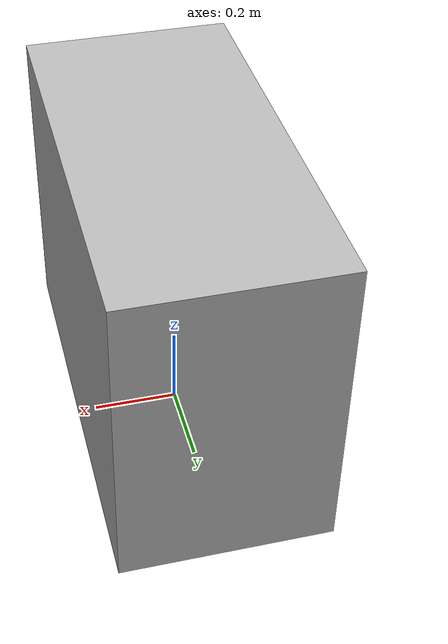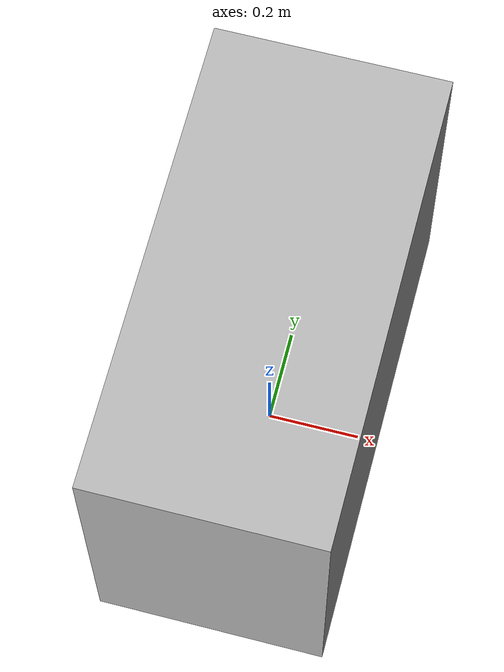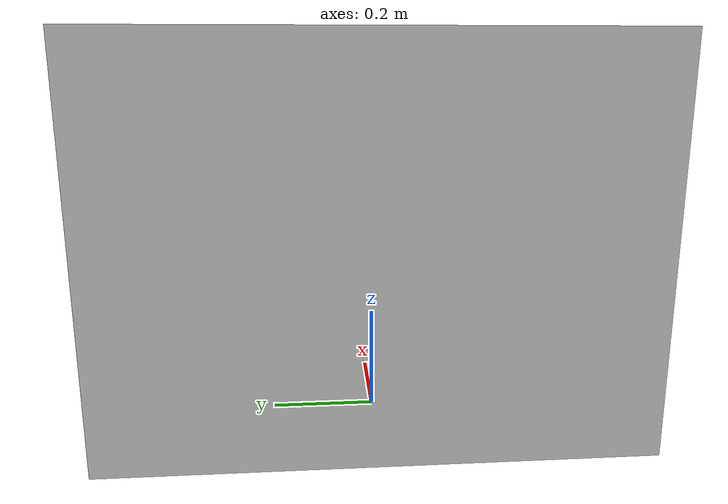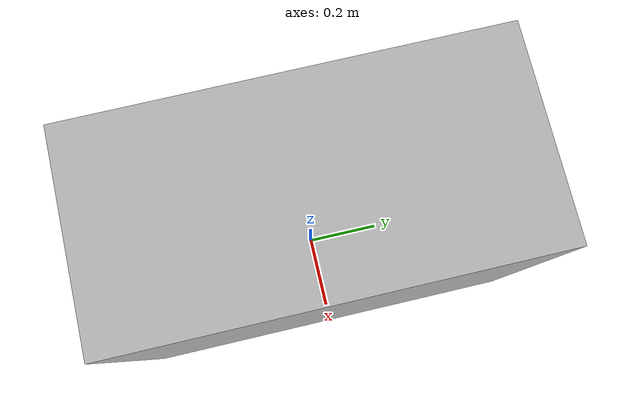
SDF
<?xml version="1.0"?>
<sdf version="1.6">
  <model name="rwc2019/safe">
    <link name="1_link">
      <collision name="1_col">
        <geometry>
          <box>
            <size>0.492 1.007 0.75</size>
          </box>
        </geometry>
      </collision>
      <visual name="1_vis">
        <geometry>
          <box>
            <size>0.492 1.007 0.75</size>
          </box>
        </geometry>
      </visual>
      <pose>0.0 0.0 0.375 0 0 0</pose>
    </link>
    <link name="on_top_of">
      <virtual_volume name="on_top_of_vv">
        <geometry>
          <box>
            <size>0.452 0.947 0.25</size>
          </box>
        </geometry>
        <pose>0.02 0.0 0.895 0 0 0</pose>
      </virtual_volume>
    </link>
    <link name="in_front_of">
      <virtual_volume name="in_front_of_vv">
        <geometry>
          <box>
            <size>0.2 0.7 0.01</size>
          </box>
        </geometry>
        <pose>0.746 -0.1 0.005 0 0 0</pose>
      </virtual_volume>
    </link>
    <static>true</static>
  </model>
</sdf>
